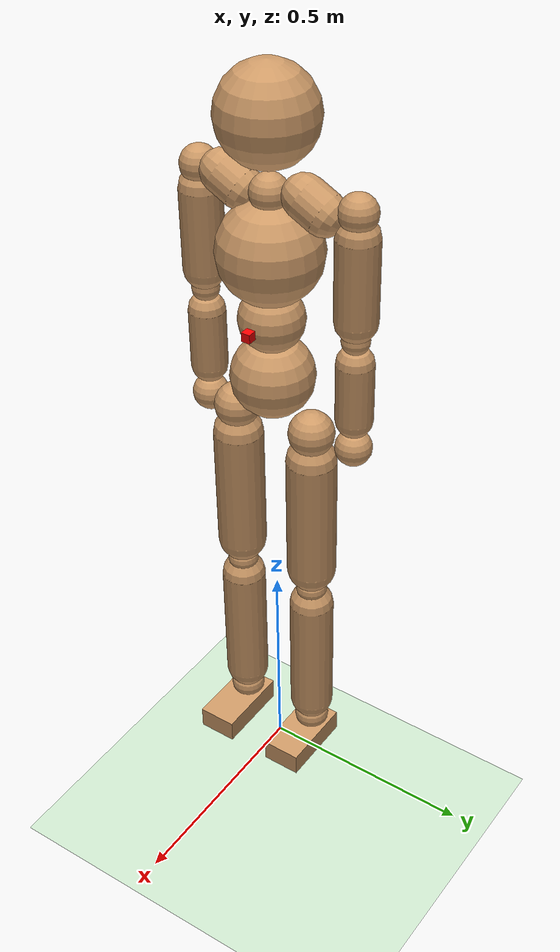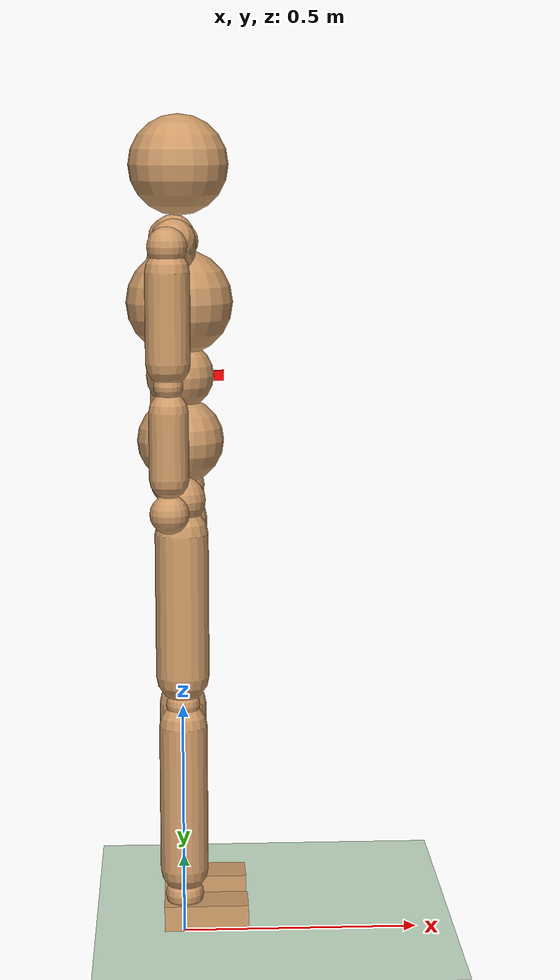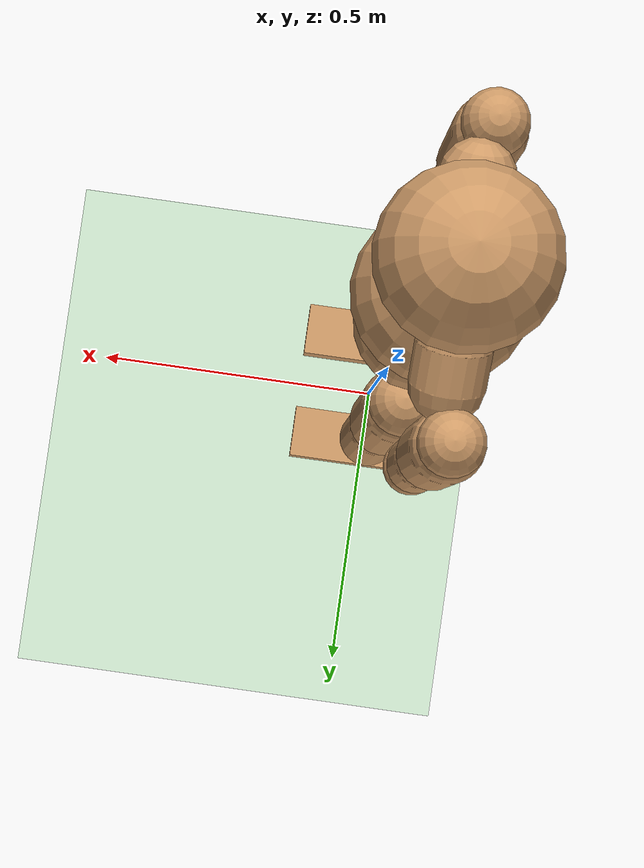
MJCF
<mujoco model="humanoid">
    <compiler angle="radian" inertiafromgeom="true"/>
    <default>
        <joint limited="true" armature="0.02" damping="5" stiffness="10"/>
        <geom conaffinity="1" condim="1" contype="1" margin="0.001" material="geom" rgba="0.8 0.6 .4 1"/>
        <site material="geom" rgba="0.8 0.6 .4 1"/>
        <motor ctrllimited="true" ctrlrange="-1.0 1.0"/>
    </default>
    <option integrator="RK4" iterations="50" solver="PGS" timestep="0.002">
    </option>
    <asset>
        <texture builtin="gradient" height="100" rgb1=".4 .5 .6" rgb2="0 0 0" type="skybox" width="100"/>
        <texture builtin="flat" height="1278" mark="cross" markrgb="1 1 1" name="texgeom" random="0.01" rgb1="0.8 0.6 0.4" rgb2="0.8 0.6 0.4" type="cube" width="127"/>
        <texture builtin="checker" height="100" name="texplane" rgb1="0 0 0" rgb2="0.8 0.8 0.8" type="2d" width="100"/>
        <material name="MatPlane" reflectance="0.5" shininess="1" specular="1" texrepeat="60 60" texture="texplane"/>
        <material name="geom" texture="texgeom" texuniform="true"/>
    </asset>
    <worldbody>
        <geom condim="3" friction="1 .1 .1" material="MatPlane" name="floor" pos="0 0 0" rgba="0.8 0.9 0.8 1" size="20 20 0.125" type="plane"/>
        <body name="root" pos="0 0 1">
            <geom name="root" mass="1" pos="0 0 0.07" size=".09" type="sphere"/>
            <light name="tracking_light" pos="0 0 7" dir="0 0 -1" mode="trackcom"/>
            <camera name="back" pos="0 3 2.4" xyaxes="-1 0 0 0 -1 2" mode="trackcom"/>
            <camera name="side" pos="-3 0 2.4" xyaxes="0 -1 0 1 0 2" mode="trackcom"/>
            <joint armature="0" damping="0" limited="false" name="root" pos="0 0 0" stiffness="0" type="free"/>
            <site name="joint_waist" pos="0 0 0.205" size="0.07" type="sphere"/>
            <site name="joint_front_x" rgba='1 0 0 1' pos="0.08 0 0.205" size="0.01 0.01 0.01" type="box"/>
            <body name="chest" pos="0 0 0.236151">
                <geom name="chest" mass=".5" pos="0 0 0.12" size=".11" type="sphere"/>
                <joint name="chest_x" axis="1 0 0" pos="0 0 0" range="-1.2 1.2" type="hinge"/>
                <joint name="chest_y" axis="0 1 0" pos="0 0 0" range="-1.2 1.2" type="hinge"/>
                <joint name="chest_z" axis="0 0 1" pos="0 0 0" range="-1.2 1.2" type="hinge"/>
                <body name="neck" pos="0 0 0.223894">
                    <geom name="neck" mass=".3" pos="0 0 0.175" size=".1025" type="sphere"/>
                    <joint name="neck_x" axis="1 0 0" pos="0 0 0" range="-1 1" type="hinge"/>
                    <joint name="neck_y" axis="0 1 0" pos="0 0 0" range="-1 1" type="hinge"/>
                    <joint name="neck_z" axis="0 0 1" pos="0 0 0" range="-1 1" type="hinge"/>
                    <site name="joint_neck" pos="0 0 0.02" size="0.04" type="sphere"/>
                </body>
                <site pos="-0.011 -0.095 0.24" euler="-90 0 0" name="right_clavicle" size="0.045 0.025" type="capsule"/>
                <body name="right_shoulder" pos="-0.02405 -0.18311 0.2435">
                    <geom fromto="0 0 -0.05 0 0 -0.23" name="right_shoulder" mass=".3" size="0.045" type="capsule"/>
                    <site name="joint_right_shoulder" pos="0 0 0" size="0.04" type="sphere"/>
                    <joint name="right_shoulder_x" axis="1 0 0" pos="0 0 0" range="-3.14 0.5" type="hinge"/>
                    <joint name="right_shoulder_y" axis="0 1 0" pos="0 0 0" range="-0.7 3.14" type="hinge"/>
                    <joint name="right_shoulder_z" axis="0 0 1" pos="0 0 0" range="-1.5 1.5" type="hinge"/>
                    <body name="right_elbow" pos="0 0 -0.274788">
                        <geom fromto="0 0 -0.0525 0 0 -0.1875" name="right_elbow" mass=".2" size="0.04" type="capsule"/>
                        <joint axis="0 -1 0" name="right_elbow" pos="0.028 0 0" range="0 3" type="hinge"/>
                        <site name="joint_right_elbow" pos="0 0 0" size="0.03" type="sphere"/>
                        <geom name="right_wrist" mass="0." pos="0 0 -0.258947" size="0.04" type="sphere"/>
                    </body>
                </body>
                <site name="left_clavicle" euler="-90 0 0" pos="-0.011 0.095 0.24" size="0.045 0.025" type="capsule"/>
                <body name="left_shoulder" pos="-0.02405 0.18311 0.2435">
                    <geom fromto="0 0 -0.05 0 0 -0.23" name="left_shoulder" mass=".3" size="0.045" type="capsule"/>
                    <joint name="left_shoulder_x" axis="1 0 0" pos="0 0 0" range="-3.14 0.5"  type="hinge"/>
                    <joint name="left_shoulder_y" axis="0 1 0" pos="0 0 0" range="-0.7 3.14"  type="hinge"/>
                    <joint name="left_shoulder_z" axis="0 0 1" pos="0 0 0" range="-1.5 1.5"  type="hinge"/>
                    <site name="joint_left_shoulder" pos="0 0 0" size="0.04" type="sphere"/>
                    <body name="left_elbow" pos="0 0 -0.274788">
                        <geom fromto="0 0 -0.0525 0 0 -0.1875" name="left_elbow" mass=".2" size="0.04" type="capsule"/>
                        <joint axis="0 -1 0" name="left_elbow" pos="0.028 0 0" range="0 3" type="hinge"/>
                        <site name="joint_left_elbow" pos="0 0 0" size="0.03" type="sphere"/>
                        <geom name="left_wrist" mass="0" pos="0 0 -0.258947" size="0.04" type="sphere"/>
                    </body>
                </body>
            </body>
            <body name="right_hip" pos="0 -0.094887 -0.05">
                <geom fromto="0 0 -0.06 0 0 -0.36" name="right_hip" mass=".5" size="0.055" type="capsule"/>
                <site name="joint_right_hip" pos="0 0 0.01" size="0.05" type="sphere"/>
                <joint name="right_hip_x" axis="1 0 0" pos="0 0 0" range="-1.2 1.2" type="hinge"/>
                <joint name="right_hip_y" axis="0 1 0" pos="0.02 0 0" range="-2.57 1.57" type="hinge"/>
                <joint name="right_hip_z" axis="0 0 1" pos="0 0 0" range="-1. 1." type="hinge"/>
                <body name="right_knee" pos="0 0 -0.421546">
                    <geom fromto="0 0 -0.045 0 0 -0.355" name="right_knee" mass=".3" size="0.05" type="capsule"/>
                    <site name="joint_right_knee" pos="0 0 0" size="0.035" type="sphere"/>
                    <joint axis="0 -1 0" name="right_knee" pos="-0.035 0 0" range="-3.14 0" type="hinge"/>
                    <body name="right_ankle" pos="0 0 -0.40987">
                        <geom name="right_ankle" mass=".2" pos="0.045 0 -0.0425" size="0.088 0.045 0.027" type="box"/>
                        <site name="joint_right_ankle" pos="0 0 0" size="0.04" type="sphere"/>
                        <joint name="right_ankle_x" axis="1 0 0" pos="0 0 0" range="-1 1" type="hinge"/>
                        <joint name="right_ankle_y" axis="0 1 0" pos="-0.02 0 0" range="-1.57 1.57" type="hinge"/>
                        <joint name="right_ankle_z" axis="0 0 1" pos="0 0 0" range="-1 1" type="hinge"/>
                    </body>
                </body>
            </body>
            <body name="left_hip" pos="0 0.094887 -0.05">
                <geom fromto="0 0 -0.06 0 0 -0.36" name="left_hip" mass=".5" size="0.055" type="capsule"/>
                <site name="joint_left_hip" pos="0 0 0.01" size="0.05" type="sphere"/>
                <joint name="left_hip_x" axis="1 0 0" pos="0 0 0" range="-1.2 1.2" type="hinge"/>
                <joint name="left_hip_y" axis="0 1 0" pos="0.02 0 0" range="-2.57 1.57" type="hinge"/>
                <joint name="left_hip_z" axis="0 0 1" pos="0 0 0" range="-1. 1." type="hinge"/>
                <body name="left_knee" pos="0 0 -0.421546">
                    <geom fromto="0 0 -0.045 0 0 -0.355" name="left_knee" mass=".3" size="0.05" type="capsule"/>
                    <site name="joint_left_knee" pos="0 0 0" size="0.035" type="sphere"/>
                    <joint axis="0 -1 0" name="left_knee" pos="-0.035 0 0" range="-3.14 0" type="hinge"/>
                    <body name="left_ankle" pos="0 0 -0.40987">
                        <geom name="left_ankle" mass=".2" pos="0.045 0 -0.0425" size="0.088 0.045 0.027" type="box"/>
                        <joint name="left_ankle_x" axis="1 0 0" pos="0 0 0" range="-1 1" type="hinge"/>
                        <joint name="left_ankle_y" axis="0 1 0" pos="-0.02 0 0" range="-1.57 1.57" type="hinge"/>
                        <joint name="left_ankle_z" axis="0 0 1" pos="0 0 0" range="-1 1" type="hinge"/>
                        <site name="joint_left_ankle" pos="0 0 0" size="0.04" type="sphere"/>
                    </body>
                </body>
            </body>
        </body>
    </worldbody>

    <actuator>
        <motor gear="30" joint="chest_x" name="chest_x" ctrllimited="true" ctrlrange="-200 200"/>
        <motor gear="30" joint="chest_y" name="chest_y" ctrllimited="true" ctrlrange="-200 200"/>
        <motor gear="30" joint="chest_z" name="chest_z" ctrllimited="true" ctrlrange="-200 200"/>
        <motor gear="10" joint="neck_x" name="neck_x" ctrllimited="true" ctrlrange="-50 50"/>
        <motor gear="10" joint="neck_y" name="neck_y" ctrllimited="true" ctrlrange="-50 50"/>
        <motor gear="10" joint="neck_z" name="neck_z" ctrllimited="true" ctrlrange="-50 50"/>

        <motor gear="25" joint="right_hip_x" name="right_hip_x" ctrllimited="true" ctrlrange="-200 200"/>
        <motor gear="25" joint="right_hip_y" name="right_hip_y" ctrllimited="true" ctrlrange="-200 200"/>
        <motor gear="25" joint="right_hip_z" name="right_hip_z" ctrllimited="true" ctrlrange="-200 200"/>

        <motor gear="20" joint="right_knee" name="right_knee" ctrllimited="true" ctrlrange="-150 0"/>
        <motor gear="20" joint="right_ankle_x" name="right_ankle_x" ctrllimited="true" ctrlrange="-90 90"/>
        <motor gear="20" joint="right_ankle_y" name="right_ankle_y" ctrllimited="true" ctrlrange="-90 90"/>
        <motor gear="20" joint="right_ankle_z" name="right_ankle_z" ctrllimited="true" ctrlrange="-90 90"/>

        <motor gear="20" joint="right_shoulder_x" name="right_shoulder_x" ctrllimited="true" ctrlrange="-100 0"/>
        <motor gear="20" joint="right_shoulder_y" name="right_shoulder_y" ctrllimited="true" ctrlrange="0 100"/>
        <motor gear="20" joint="right_shoulder_z" name="right_shoulder_z" ctrllimited="true" ctrlrange="-100 100"/>
        <motor gear="16" joint="right_elbow" name="right_elbow" ctrllimited="true" ctrlrange="0 60"/>

        <motor gear="25" joint="left_hip_x" name="left_hip_x" ctrllimited="true" ctrlrange="-200 200"/>
        <motor gear="25" joint="left_hip_y" name="left_hip_y" ctrllimited="true" ctrlrange="-200 200"/>
        <motor gear="25" joint="left_hip_z" name="left_hip_z" ctrllimited="true" ctrlrange="-200 200"/>

        <motor gear="20" joint="left_knee" name="left_knee" ctrllimited="true" ctrlrange="-150 0"/>
        <motor gear="20" joint="left_ankle_x" name="left_ankle_x" ctrllimited="true" ctrlrange="-90 90"/>
        <motor gear="20" joint="left_ankle_y" name="left_ankle_y" ctrllimited="true" ctrlrange="-90 90"/>
        <motor gear="20" joint="left_ankle_z" name="left_ankle_z" ctrllimited="true" ctrlrange="-90 90"/>

        <motor gear="20" joint="left_shoulder_x" name="left_shoulder_x" ctrllimited="true" ctrlrange="-100 0"/>
        <motor gear="20" joint="left_shoulder_y" name="left_shoulder_y" ctrllimited="true" ctrlrange="0 100"/>
        <motor gear="20" joint="left_shoulder_z" name="left_shoulder_z" ctrllimited="true" ctrlrange="-100 100"/>
        <motor gear="16" joint="left_elbow" name="left_elbow" ctrllimited="true" ctrlrange="0 60"/>
    </actuator>
</mujoco>
